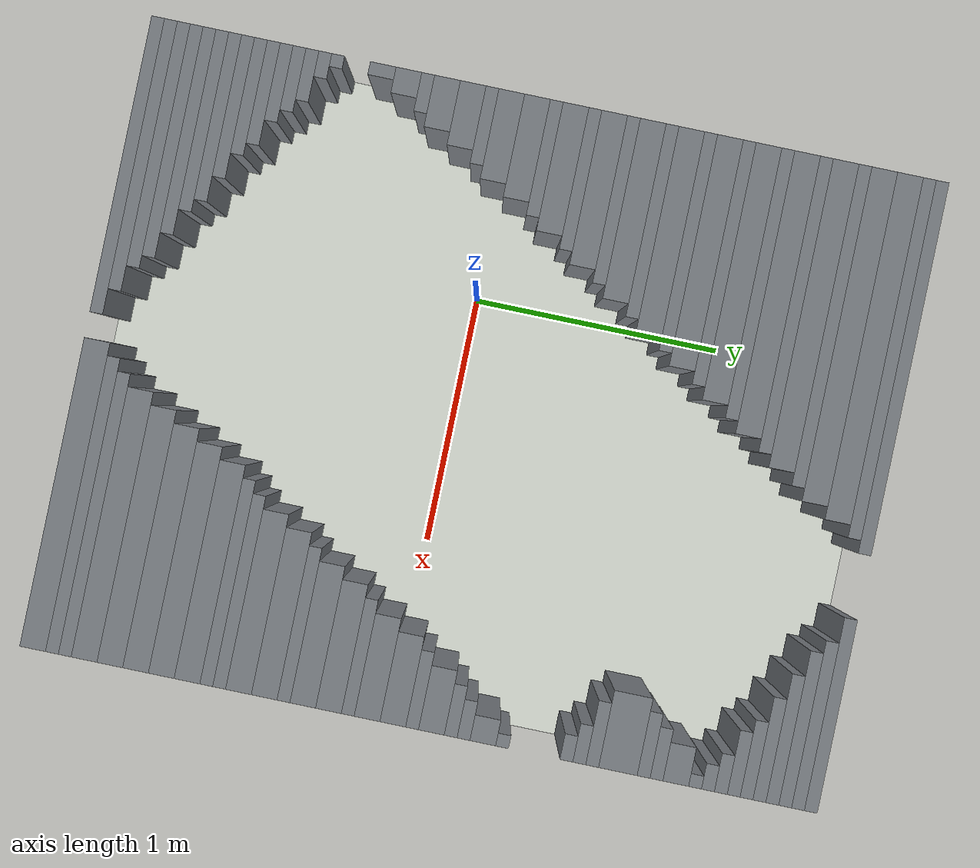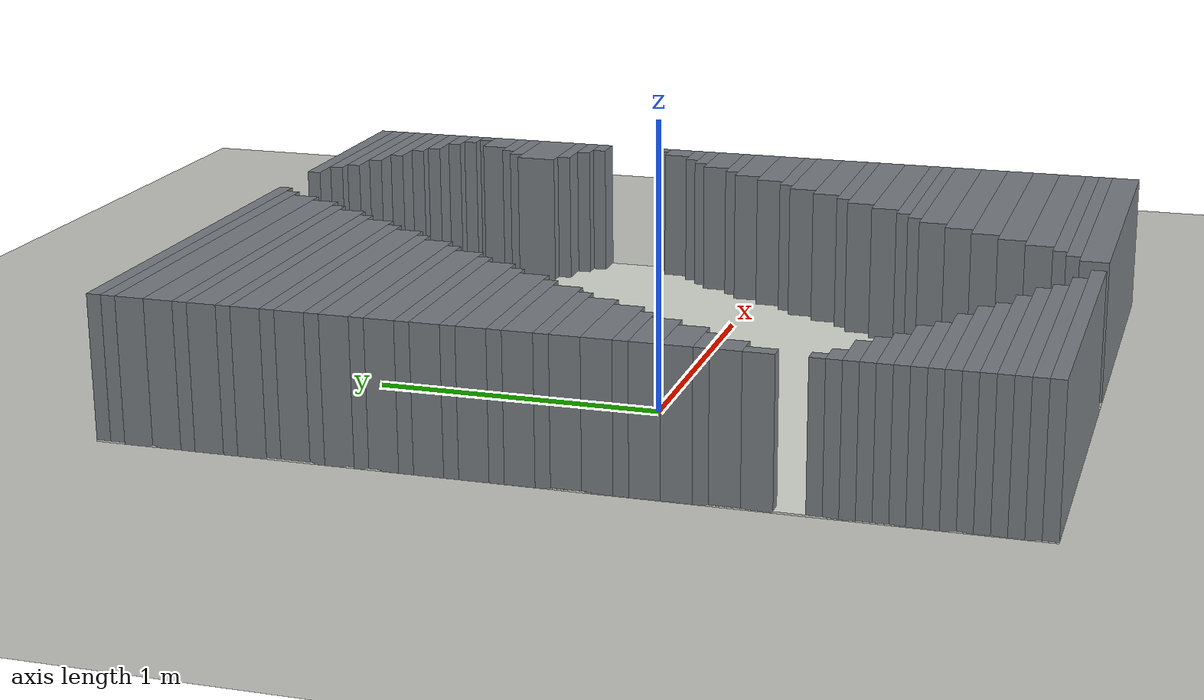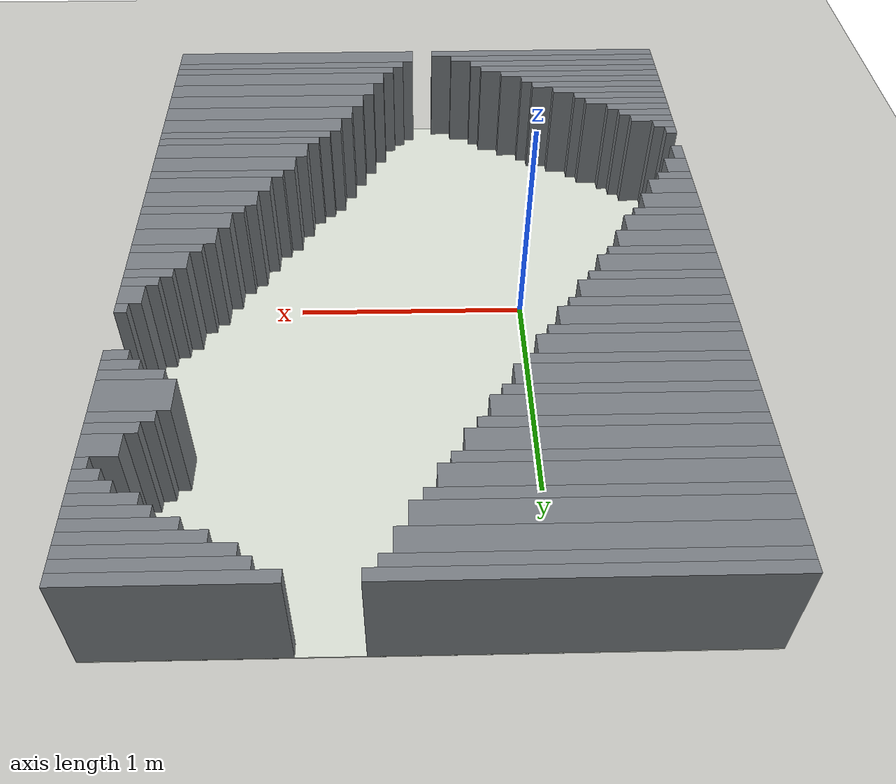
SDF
<sdf version="1.9">
 <world name="two_tb4_lab">
  <model name="ground_plane">
   <static>true</static>
   <link name="link">
    <collision name="collision">
     <geometry><plane><normal>0 0 1</normal><size>5 5</size></plane></geometry>
    </collision>
    <visual name="visual">
     <geometry><plane><normal>0 0 1</normal><size>5 5</size></plane></geometry>
     <material><ambient>0.78 0.78 0.76 1</ambient><diffuse>0.78 0.78 0.76 1</diffuse></material>
    </visual>
   </link>
  </model>
  <model name="lab_map_floor">
   <static>true</static>
   <pose>0.450 0.125 0.003 0 0 0</pose>
   <link name="link">
    <visual name="visual">
     <geometry><box><size>2.450 3.100 0.006</size></box></geometry>
     <material><ambient>0.86 0.88 0.84 1</ambient><diffuse>0.86 0.88 0.84 1</diffuse></material>
    </visual>
   </link>
  </model>
  <model name="lab_unknown_cells">
   <static>true</static>
   <link name="lab_unknown_cells_000">
    <pose>-0.200 -1.400 0.250 0 0 0</pose>
    <collision name="collision"><geometry><box><size>1.150 0.050 0.500</size></box></geometry></collision>
    <visual name="visual">
     <geometry><box><size>1.150 0.050 0.500</size></box></geometry>
     <material><ambient>0.48 0.50 0.52 1</ambient><diffuse>0.48 0.50 0.52 1</diffuse></material>
    </visual>
   </link>
   <link name="lab_unknown_cells_001">
    <pose>1.075 -1.375 0.250 0 0 0</pose>
    <collision name="collision"><geometry><box><size>1.200 0.100 0.500</size></box></geometry></collision>
    <visual name="visual">
     <geometry><box><size>1.200 0.100 0.500</size></box></geometry>
     <material><ambient>0.48 0.50 0.52 1</ambient><diffuse>0.48 0.50 0.52 1</diffuse></material>
    </visual>
   </link>
   <link name="lab_unknown_cells_002">
    <pose>-0.250 -1.350 0.250 0 0 0</pose>
    <collision name="collision"><geometry><box><size>1.050 0.050 0.500</size></box></geometry></collision>
    <visual name="visual">
     <geometry><box><size>1.050 0.050 0.500</size></box></geometry>
     <material><ambient>0.48 0.50 0.52 1</ambient><diffuse>0.48 0.50 0.52 1</diffuse></material>
    </visual>
   </link>
   <link name="lab_unknown_cells_003">
    <pose>-0.300 -1.300 0.250 0 0 0</pose>
    <collision name="collision"><geometry><box><size>0.950 0.050 0.500</size></box></geometry></collision>
    <visual name="visual">
     <geometry><box><size>0.950 0.050 0.500</size></box></geometry>
     <material><ambient>0.48 0.50 0.52 1</ambient><diffuse>0.48 0.50 0.52 1</diffuse></material>
    </visual>
   </link>
   <link name="lab_unknown_cells_004">
    <pose>1.100 -1.300 0.250 0 0 0</pose>
    <collision name="collision"><geometry><box><size>1.150 0.050 0.500</size></box></geometry></collision>
    <visual name="visual">
     <geometry><box><size>1.150 0.050 0.500</size></box></geometry>
     <material><ambient>0.48 0.50 0.52 1</ambient><diffuse>0.48 0.50 0.52 1</diffuse></material>
    </visual>
   </link>
   <link name="lab_unknown_cells_005">
    <pose>-0.325 -1.250 0.250 0 0 0</pose>
    <collision name="collision"><geometry><box><size>0.900 0.050 0.500</size></box></geometry></collision>
    <visual name="visual">
     <geometry><box><size>0.900 0.050 0.500</size></box></geometry>
     <material><ambient>0.48 0.50 0.52 1</ambient><diffuse>0.48 0.50 0.52 1</diffuse></material>
    </visual>
   </link>
   <link name="lab_unknown_cells_006">
    <pose>1.125 -1.250 0.250 0 0 0</pose>
    <collision name="collision"><geometry><box><size>1.100 0.050 0.500</size></box></geometry></collision>
    <visual name="visual">
     <geometry><box><size>1.100 0.050 0.500</size></box></geometry>
     <material><ambient>0.48 0.50 0.52 1</ambient><diffuse>0.48 0.50 0.52 1</diffuse></material>
    </visual>
   </link>
   <link name="lab_unknown_cells_007">
    <pose>-0.375 -1.200 0.250 0 0 0</pose>
    <collision name="collision"><geometry><box><size>0.800 0.050 0.500</size></box></geometry></collision>
    <visual name="visual">
     <geometry><box><size>0.800 0.050 0.500</size></box></geometry>
     <material><ambient>0.48 0.50 0.52 1</ambient><diffuse>0.48 0.50 0.52 1</diffuse></material>
    </visual>
   </link>
   <link name="lab_unknown_cells_008">
    <pose>1.150 -1.175 0.250 0 0 0</pose>
    <collision name="collision"><geometry><box><size>1.050 0.100 0.500</size></box></geometry></collision>
    <visual name="visual">
     <geometry><box><size>1.050 0.100 0.500</size></box></geometry>
     <material><ambient>0.48 0.50 0.52 1</ambient><diffuse>0.48 0.50 0.52 1</diffuse></material>
    </visual>
   </link>
   <link name="lab_unknown_cells_009">
    <pose>-0.425 -1.150 0.250 0 0 0</pose>
    <collision name="collision"><geometry><box><size>0.700 0.050 0.500</size></box></geometry></collision>
    <visual name="visual">
     <geometry><box><size>0.700 0.050 0.500</size></box></geometry>
     <material><ambient>0.48 0.50 0.52 1</ambient><diffuse>0.48 0.50 0.52 1</diffuse></material>
    </visual>
   </link>
   <link name="lab_unknown_cells_010">
    <pose>-0.450 -1.100 0.250 0 0 0</pose>
    <collision name="collision"><geometry><box><size>0.650 0.050 0.500</size></box></geometry></collision>
    <visual name="visual">
     <geometry><box><size>0.650 0.050 0.500</size></box></geometry>
     <material><ambient>0.48 0.50 0.52 1</ambient><diffuse>0.48 0.50 0.52 1</diffuse></material>
    </visual>
   </link>
   <link name="lab_unknown_cells_011">
    <pose>1.175 -1.075 0.250 0 0 0</pose>
    <collision name="collision"><geometry><box><size>1.000 0.100 0.500</size></box></geometry></collision>
    <visual name="visual">
     <geometry><box><size>1.000 0.100 0.500</size></box></geometry>
     <material><ambient>0.48 0.50 0.52 1</ambient><diffuse>0.48 0.50 0.52 1</diffuse></material>
    </visual>
   </link>
   <link name="lab_unknown_cells_012">
    <pose>-0.500 -1.050 0.250 0 0 0</pose>
    <collision name="collision"><geometry><box><size>0.550 0.050 0.500</size></box></geometry></collision>
    <visual name="visual">
     <geometry><box><size>0.550 0.050 0.500</size></box></geometry>
     <material><ambient>0.48 0.50 0.52 1</ambient><diffuse>0.48 0.50 0.52 1</diffuse></material>
    </visual>
   </link>
   <link name="lab_unknown_cells_013">
    <pose>-0.550 -1.000 0.250 0 0 0</pose>
    <collision name="collision"><geometry><box><size>0.450 0.050 0.500</size></box></geometry></collision>
    <visual name="visual">
     <geometry><box><size>0.450 0.050 0.500</size></box></geometry>
     <material><ambient>0.48 0.50 0.52 1</ambient><diffuse>0.48 0.50 0.52 1</diffuse></material>
    </visual>
   </link>
   <link name="lab_unknown_cells_014">
    <pose>1.200 -0.975 0.250 0 0 0</pose>
    <collision name="collision"><geometry><box><size>0.950 0.100 0.500</size></box></geometry></collision>
    <visual name="visual">
     <geometry><box><size>0.950 0.100 0.500</size></box></geometry>
     <material><ambient>0.48 0.50 0.52 1</ambient><diffuse>0.48 0.50 0.52 1</diffuse></material>
    </visual>
   </link>
   <link name="lab_unknown_cells_015">
    <pose>-0.575 -0.950 0.250 0 0 0</pose>
    <collision name="collision"><geometry><box><size>0.400 0.050 0.500</size></box></geometry></collision>
    <visual name="visual">
     <geometry><box><size>0.400 0.050 0.500</size></box></geometry>
     <material><ambient>0.48 0.50 0.52 1</ambient><diffuse>0.48 0.50 0.52 1</diffuse></material>
    </visual>
   </link>
   <link name="lab_unknown_cells_016">
    <pose>-0.625 -0.900 0.250 0 0 0</pose>
    <collision name="collision"><geometry><box><size>0.300 0.050 0.500</size></box></geometry></collision>
    <visual name="visual">
     <geometry><box><size>0.300 0.050 0.500</size></box></geometry>
     <material><ambient>0.48 0.50 0.52 1</ambient><diffuse>0.48 0.50 0.52 1</diffuse></material>
    </visual>
   </link>
   <link name="lab_unknown_cells_017">
    <pose>1.225 -0.875 0.250 0 0 0</pose>
    <collision name="collision"><geometry><box><size>0.900 0.100 0.500</size></box></geometry></collision>
    <visual name="visual">
     <geometry><box><size>0.900 0.100 0.500</size></box></geometry>
     <material><ambient>0.48 0.50 0.52 1</ambient><diffuse>0.48 0.50 0.52 1</diffuse></material>
    </visual>
   </link>
   <link name="lab_unknown_cells_018">
    <pose>-0.650 -0.850 0.250 0 0 0</pose>
    <collision name="collision"><geometry><box><size>0.250 0.050 0.500</size></box></geometry></collision>
    <visual name="visual">
     <geometry><box><size>0.250 0.050 0.500</size></box></geometry>
     <material><ambient>0.48 0.50 0.52 1</ambient><diffuse>0.48 0.50 0.52 1</diffuse></material>
    </visual>
   </link>
   <link name="lab_unknown_cells_019">
    <pose>-0.675 -0.800 0.250 0 0 0</pose>
    <collision name="collision"><geometry><box><size>0.200 0.050 0.500</size></box></geometry></collision>
    <visual name="visual">
     <geometry><box><size>0.200 0.050 0.500</size></box></geometry>
     <material><ambient>0.48 0.50 0.52 1</ambient><diffuse>0.48 0.50 0.52 1</diffuse></material>
    </visual>
   </link>
   <link name="lab_unknown_cells_020">
    <pose>1.250 -0.775 0.250 0 0 0</pose>
    <collision name="collision"><geometry><box><size>0.850 0.100 0.500</size></box></geometry></collision>
    <visual name="visual">
     <geometry><box><size>0.850 0.100 0.500</size></box></geometry>
     <material><ambient>0.48 0.50 0.52 1</ambient><diffuse>0.48 0.50 0.52 1</diffuse></material>
    </visual>
   </link>
   <link name="lab_unknown_cells_021">
    <pose>-0.725 -0.750 0.250 0 0 0</pose>
    <collision name="collision"><geometry><box><size>0.100 0.050 0.500</size></box></geometry></collision>
    <visual name="visual">
     <geometry><box><size>0.100 0.050 0.500</size></box></geometry>
     <material><ambient>0.48 0.50 0.52 1</ambient><diffuse>0.48 0.50 0.52 1</diffuse></material>
    </visual>
   </link>
   <link name="lab_unknown_cells_022">
    <pose>-0.750 -0.700 0.250 0 0 0</pose>
    <collision name="collision"><geometry><box><size>0.050 0.050 0.500</size></box></geometry></collision>
    <visual name="visual">
     <geometry><box><size>0.050 0.050 0.500</size></box></geometry>
     <material><ambient>0.48 0.50 0.52 1</ambient><diffuse>0.48 0.50 0.52 1</diffuse></material>
    </visual>
   </link>
   <link name="lab_unknown_cells_023">
    <pose>1.275 -0.700 0.250 0 0 0</pose>
    <collision name="collision"><geometry><box><size>0.800 0.050 0.500</size></box></geometry></collision>
    <visual name="visual">
     <geometry><box><size>0.800 0.050 0.500</size></box></geometry>
     <material><ambient>0.48 0.50 0.52 1</ambient><diffuse>0.48 0.50 0.52 1</diffuse></material>
    </visual>
   </link>
   <link name="lab_unknown_cells_024">
    <pose>1.300 -0.650 0.250 0 0 0</pose>
    <collision name="collision"><geometry><box><size>0.750 0.050 0.500</size></box></geometry></collision>
    <visual name="visual">
     <geometry><box><size>0.750 0.050 0.500</size></box></geometry>
     <material><ambient>0.48 0.50 0.52 1</ambient><diffuse>0.48 0.50 0.52 1</diffuse></material>
    </visual>
   </link>
   <link name="lab_unknown_cells_025">
    <pose>1.325 -0.575 0.250 0 0 0</pose>
    <collision name="collision"><geometry><box><size>0.700 0.100 0.500</size></box></geometry></collision>
    <visual name="visual">
     <geometry><box><size>0.700 0.100 0.500</size></box></geometry>
     <material><ambient>0.48 0.50 0.52 1</ambient><diffuse>0.48 0.50 0.52 1</diffuse></material>
    </visual>
   </link>
   <link name="lab_unknown_cells_026">
    <pose>-0.750 -0.525 0.250 0 0 0</pose>
    <collision name="collision"><geometry><box><size>0.050 0.100 0.500</size></box></geometry></collision>
    <visual name="visual">
     <geometry><box><size>0.050 0.100 0.500</size></box></geometry>
     <material><ambient>0.48 0.50 0.52 1</ambient><diffuse>0.48 0.50 0.52 1</diffuse></material>
    </visual>
   </link>
   <link name="lab_unknown_cells_027">
    <pose>1.350 -0.475 0.250 0 0 0</pose>
    <collision name="collision"><geometry><box><size>0.650 0.100 0.500</size></box></geometry></collision>
    <visual name="visual">
     <geometry><box><size>0.650 0.100 0.500</size></box></geometry>
     <material><ambient>0.48 0.50 0.52 1</ambient><diffuse>0.48 0.50 0.52 1</diffuse></material>
    </visual>
   </link>
   <link name="lab_unknown_cells_028">
    <pose>-0.725 -0.425 0.250 0 0 0</pose>
    <collision name="collision"><geometry><box><size>0.100 0.100 0.500</size></box></geometry></collision>
    <visual name="visual">
     <geometry><box><size>0.100 0.100 0.500</size></box></geometry>
     <material><ambient>0.48 0.50 0.52 1</ambient><diffuse>0.48 0.50 0.52 1</diffuse></material>
    </visual>
   </link>
   <link name="lab_unknown_cells_029">
    <pose>1.375 -0.400 0.250 0 0 0</pose>
    <collision name="collision"><geometry><box><size>0.600 0.050 0.500</size></box></geometry></collision>
    <visual name="visual">
     <geometry><box><size>0.600 0.050 0.500</size></box></geometry>
     <material><ambient>0.48 0.50 0.52 1</ambient><diffuse>0.48 0.50 0.52 1</diffuse></material>
    </visual>
   </link>
   <link name="lab_unknown_cells_030">
    <pose>-0.700 -0.350 0.250 0 0 0</pose>
    <collision name="collision"><geometry><box><size>0.150 0.050 0.500</size></box></geometry></collision>
    <visual name="visual">
     <geometry><box><size>0.150 0.050 0.500</size></box></geometry>
     <material><ambient>0.48 0.50 0.52 1</ambient><diffuse>0.48 0.50 0.52 1</diffuse></material>
    </visual>
   </link>
   <link name="lab_unknown_cells_031">
    <pose>1.400 -0.325 0.250 0 0 0</pose>
    <collision name="collision"><geometry><box><size>0.550 0.100 0.500</size></box></geometry></collision>
    <visual name="visual">
     <geometry><box><size>0.550 0.100 0.500</size></box></geometry>
     <material><ambient>0.48 0.50 0.52 1</ambient><diffuse>0.48 0.50 0.52 1</diffuse></material>
    </visual>
   </link>
   <link name="lab_unknown_cells_032">
    <pose>-0.675 -0.275 0.250 0 0 0</pose>
    <collision name="collision"><geometry><box><size>0.200 0.100 0.500</size></box></geometry></collision>
    <visual name="visual">
     <geometry><box><size>0.200 0.100 0.500</size></box></geometry>
     <material><ambient>0.48 0.50 0.52 1</ambient><diffuse>0.48 0.50 0.52 1</diffuse></material>
    </visual>
   </link>
   <link name="lab_unknown_cells_033">
    <pose>1.425 -0.225 0.250 0 0 0</pose>
    <collision name="collision"><geometry><box><size>0.500 0.100 0.500</size></box></geometry></collision>
    <visual name="visual">
     <geometry><box><size>0.500 0.100 0.500</size></box></geometry>
     <material><ambient>0.48 0.50 0.52 1</ambient><diffuse>0.48 0.50 0.52 1</diffuse></material>
    </visual>
   </link>
   <link name="lab_unknown_cells_034">
    <pose>-0.650 -0.175 0.250 0 0 0</pose>
    <collision name="collision"><geometry><box><size>0.250 0.100 0.500</size></box></geometry></collision>
    <visual name="visual">
     <geometry><box><size>0.250 0.100 0.500</size></box></geometry>
     <material><ambient>0.48 0.50 0.52 1</ambient><diffuse>0.48 0.50 0.52 1</diffuse></material>
    </visual>
   </link>
   <link name="lab_unknown_cells_035">
    <pose>1.450 -0.150 0.250 0 0 0</pose>
    <collision name="collision"><geometry><box><size>0.450 0.050 0.500</size></box></geometry></collision>
    <visual name="visual">
     <geometry><box><size>0.450 0.050 0.500</size></box></geometry>
     <material><ambient>0.48 0.50 0.52 1</ambient><diffuse>0.48 0.50 0.52 1</diffuse></material>
    </visual>
   </link>
   <link name="lab_unknown_cells_036">
    <pose>-0.625 -0.100 0.250 0 0 0</pose>
    <collision name="collision"><geometry><box><size>0.300 0.050 0.500</size></box></geometry></collision>
    <visual name="visual">
     <geometry><box><size>0.300 0.050 0.500</size></box></geometry>
     <material><ambient>0.48 0.50 0.52 1</ambient><diffuse>0.48 0.50 0.52 1</diffuse></material>
    </visual>
   </link>
   <link name="lab_unknown_cells_037">
    <pose>1.475 -0.075 0.250 0 0 0</pose>
    <collision name="collision"><geometry><box><size>0.400 0.100 0.500</size></box></geometry></collision>
    <visual name="visual">
     <geometry><box><size>0.400 0.100 0.500</size></box></geometry>
     <material><ambient>0.48 0.50 0.52 1</ambient><diffuse>0.48 0.50 0.52 1</diffuse></material>
    </visual>
   </link>
   <link name="lab_unknown_cells_038">
    <pose>-0.600 -0.025 0.250 0 0 0</pose>
    <collision name="collision"><geometry><box><size>0.350 0.100 0.500</size></box></geometry></collision>
    <visual name="visual">
     <geometry><box><size>0.350 0.100 0.500</size></box></geometry>
     <material><ambient>0.48 0.50 0.52 1</ambient><diffuse>0.48 0.50 0.52 1</diffuse></material>
    </visual>
   </link>
   <link name="lab_unknown_cells_039">
    <pose>1.500 0.025 0.250 0 0 0</pose>
    <collision name="collision"><geometry><box><size>0.350 0.100 0.500</size></box></geometry></collision>
    <visual name="visual">
     <geometry><box><size>0.350 0.100 0.500</size></box></geometry>
     <material><ambient>0.48 0.50 0.52 1</ambient><diffuse>0.48 0.50 0.52 1</diffuse></material>
    </visual>
   </link>
   <link name="lab_unknown_cells_040">
    <pose>-0.575 0.075 0.250 0 0 0</pose>
    <collision name="collision"><geometry><box><size>0.400 0.100 0.500</size></box></geometry></collision>
    <visual name="visual">
     <geometry><box><size>0.400 0.100 0.500</size></box></geometry>
     <material><ambient>0.48 0.50 0.52 1</ambient><diffuse>0.48 0.50 0.52 1</diffuse></material>
    </visual>
   </link>
   <link name="lab_unknown_cells_041">
    <pose>1.525 0.100 0.250 0 0 0</pose>
    <collision name="collision"><geometry><box><size>0.300 0.050 0.500</size></box></geometry></collision>
    <visual name="visual">
     <geometry><box><size>0.300 0.050 0.500</size></box></geometry>
     <material><ambient>0.48 0.50 0.52 1</ambient><diffuse>0.48 0.50 0.52 1</diffuse></material>
    </visual>
   </link>
   <link name="lab_unknown_cells_042">
    <pose>-0.550 0.150 0.250 0 0 0</pose>
    <collision name="collision"><geometry><box><size>0.450 0.050 0.500</size></box></geometry></collision>
    <visual name="visual">
     <geometry><box><size>0.450 0.050 0.500</size></box></geometry>
     <material><ambient>0.48 0.50 0.52 1</ambient><diffuse>0.48 0.50 0.52 1</diffuse></material>
    </visual>
   </link>
   <link name="lab_unknown_cells_043">
    <pose>1.550 0.175 0.250 0 0 0</pose>
    <collision name="collision"><geometry><box><size>0.250 0.100 0.500</size></box></geometry></collision>
    <visual name="visual">
     <geometry><box><size>0.250 0.100 0.500</size></box></geometry>
     <material><ambient>0.48 0.50 0.52 1</ambient><diffuse>0.48 0.50 0.52 1</diffuse></material>
    </visual>
   </link>
   <link name="lab_unknown_cells_044">
    <pose>-0.525 0.225 0.250 0 0 0</pose>
    <collision name="collision"><geometry><box><size>0.500 0.100 0.500</size></box></geometry></collision>
    <visual name="visual">
     <geometry><box><size>0.500 0.100 0.500</size></box></geometry>
     <material><ambient>0.48 0.50 0.52 1</ambient><diffuse>0.48 0.50 0.52 1</diffuse></material>
    </visual>
   </link>
   <link name="lab_unknown_cells_045">
    <pose>1.575 0.250 0.250 0 0 0</pose>
    <collision name="collision"><geometry><box><size>0.200 0.050 0.500</size></box></geometry></collision>
    <visual name="visual">
     <geometry><box><size>0.200 0.050 0.500</size></box></geometry>
     <material><ambient>0.48 0.50 0.52 1</ambient><diffuse>0.48 0.50 0.52 1</diffuse></material>
    </visual>
   </link>
   <link name="lab_unknown_cells_046">
    <pose>-0.500 0.300 0.250 0 0 0</pose>
    <collision name="collision"><geometry><box><size>0.550 0.050 0.500</size></box></geometry></collision>
    <visual name="visual">
     <geometry><box><size>0.550 0.050 0.500</size></box></geometry>
     <material><ambient>0.48 0.50 0.52 1</ambient><diffuse>0.48 0.50 0.52 1</diffuse></material>
    </visual>
   </link>
   <link name="lab_unknown_cells_047">
    <pose>1.600 0.300 0.250 0 0 0</pose>
    <collision name="collision"><geometry><box><size>0.150 0.050 0.500</size></box></geometry></collision>
    <visual name="visual">
     <geometry><box><size>0.150 0.050 0.500</size></box></geometry>
     <material><ambient>0.48 0.50 0.52 1</ambient><diffuse>0.48 0.50 0.52 1</diffuse></material>
    </visual>
   </link>
   <link name="lab_unknown_cells_048">
    <pose>-0.475 0.375 0.250 0 0 0</pose>
    <collision name="collision"><geometry><box><size>0.600 0.100 0.500</size></box></geometry></collision>
    <visual name="visual">
     <geometry><box><size>0.600 0.100 0.500</size></box></geometry>
     <material><ambient>0.48 0.50 0.52 1</ambient><diffuse>0.48 0.50 0.52 1</diffuse></material>
    </visual>
   </link>
   <link name="lab_unknown_cells_049">
    <pose>1.625 0.375 0.250 0 0 0</pose>
    <collision name="collision"><geometry><box><size>0.100 0.100 0.500</size></box></geometry></collision>
    <visual name="visual">
     <geometry><box><size>0.100 0.100 0.500</size></box></geometry>
     <material><ambient>0.48 0.50 0.52 1</ambient><diffuse>0.48 0.50 0.52 1</diffuse></material>
    </visual>
   </link>
   <link name="lab_unknown_cells_050">
    <pose>-0.450 0.450 0.250 0 0 0</pose>
    <collision name="collision"><geometry><box><size>0.650 0.050 0.500</size></box></geometry></collision>
    <visual name="visual">
     <geometry><box><size>0.650 0.050 0.500</size></box></geometry>
     <material><ambient>0.48 0.50 0.52 1</ambient><diffuse>0.48 0.50 0.52 1</diffuse></material>
    </visual>
   </link>
   <link name="lab_unknown_cells_051">
    <pose>1.650 0.450 0.250 0 0 0</pose>
    <collision name="collision"><geometry><box><size>0.050 0.050 0.500</size></box></geometry></collision>
    <visual name="visual">
     <geometry><box><size>0.050 0.050 0.500</size></box></geometry>
     <material><ambient>0.48 0.50 0.52 1</ambient><diffuse>0.48 0.50 0.52 1</diffuse></material>
    </visual>
   </link>
   <link name="lab_unknown_cells_052">
    <pose>-0.425 0.525 0.250 0 0 0</pose>
    <collision name="collision"><geometry><box><size>0.700 0.100 0.500</size></box></geometry></collision>
    <visual name="visual">
     <geometry><box><size>0.700 0.100 0.500</size></box></geometry>
     <material><ambient>0.48 0.50 0.52 1</ambient><diffuse>0.48 0.50 0.52 1</diffuse></material>
    </visual>
   </link>
   <link name="lab_unknown_cells_053">
    <pose>-0.400 0.600 0.250 0 0 0</pose>
    <collision name="collision"><geometry><box><size>0.750 0.050 0.500</size></box></geometry></collision>
    <visual name="visual">
     <geometry><box><size>0.750 0.050 0.500</size></box></geometry>
     <material><ambient>0.48 0.50 0.52 1</ambient><diffuse>0.48 0.50 0.52 1</diffuse></material>
    </visual>
   </link>
   <link name="lab_unknown_cells_054">
    <pose>-0.375 0.675 0.250 0 0 0</pose>
    <collision name="collision"><geometry><box><size>0.800 0.100 0.500</size></box></geometry></collision>
    <visual name="visual">
     <geometry><box><size>0.800 0.100 0.500</size></box></geometry>
     <material><ambient>0.48 0.50 0.52 1</ambient><diffuse>0.48 0.50 0.52 1</diffuse></material>
    </visual>
   </link>
   <link name="lab_unknown_cells_055">
    <pose>1.625 0.700 0.250 0 0 0</pose>
    <collision name="collision"><geometry><box><size>0.100 0.050 0.500</size></box></geometry></collision>
    <visual name="visual">
     <geometry><box><size>0.100 0.050 0.500</size></box></geometry>
     <material><ambient>0.48 0.50 0.52 1</ambient><diffuse>0.48 0.50 0.52 1</diffuse></material>
    </visual>
   </link>
   <link name="lab_unknown_cells_056">
    <pose>-0.350 0.750 0.250 0 0 0</pose>
    <collision name="collision"><geometry><box><size>0.850 0.050 0.500</size></box></geometry></collision>
    <visual name="visual">
     <geometry><box><size>0.850 0.050 0.500</size></box></geometry>
     <material><ambient>0.48 0.50 0.52 1</ambient><diffuse>0.48 0.50 0.52 1</diffuse></material>
    </visual>
   </link>
   <link name="lab_unknown_cells_057">
    <pose>1.600 0.750 0.250 0 0 0</pose>
    <collision name="collision"><geometry><box><size>0.150 0.050 0.500</size></box></geometry></collision>
    <visual name="visual">
     <geometry><box><size>0.150 0.050 0.500</size></box></geometry>
     <material><ambient>0.48 0.50 0.52 1</ambient><diffuse>0.48 0.50 0.52 1</diffuse></material>
    </visual>
   </link>
   <link name="lab_unknown_cells_058">
    <pose>1.550 0.800 0.250 0 0 0</pose>
    <collision name="collision"><geometry><box><size>0.250 0.050 0.500</size></box></geometry></collision>
    <visual name="visual">
     <geometry><box><size>0.250 0.050 0.500</size></box></geometry>
     <material><ambient>0.48 0.50 0.52 1</ambient><diffuse>0.48 0.50 0.52 1</diffuse></material>
    </visual>
   </link>
   <link name="lab_unknown_cells_059">
    <pose>-0.325 0.825 0.250 0 0 0</pose>
    <collision name="collision"><geometry><box><size>0.900 0.100 0.500</size></box></geometry></collision>
    <visual name="visual">
     <geometry><box><size>0.900 0.100 0.500</size></box></geometry>
     <material><ambient>0.48 0.50 0.52 1</ambient><diffuse>0.48 0.50 0.52 1</diffuse></material>
    </visual>
   </link>
   <link name="lab_unknown_cells_060">
    <pose>-0.300 0.900 0.250 0 0 0</pose>
    <collision name="collision"><geometry><box><size>0.950 0.050 0.500</size></box></geometry></collision>
    <visual name="visual">
     <geometry><box><size>0.950 0.050 0.500</size></box></geometry>
     <material><ambient>0.48 0.50 0.52 1</ambient><diffuse>0.48 0.50 0.52 1</diffuse></material>
    </visual>
   </link>
   <link name="lab_unknown_cells_061">
    <pose>1.525 0.900 0.250 0 0 0</pose>
    <collision name="collision"><geometry><box><size>0.300 0.150 0.500</size></box></geometry></collision>
    <visual name="visual">
     <geometry><box><size>0.300 0.150 0.500</size></box></geometry>
     <material><ambient>0.48 0.50 0.52 1</ambient><diffuse>0.48 0.50 0.52 1</diffuse></material>
    </visual>
   </link>
   <link name="lab_unknown_cells_062">
    <pose>-0.275 0.975 0.250 0 0 0</pose>
    <collision name="collision"><geometry><box><size>1.000 0.100 0.500</size></box></geometry></collision>
    <visual name="visual">
     <geometry><box><size>1.000 0.100 0.500</size></box></geometry>
     <material><ambient>0.48 0.50 0.52 1</ambient><diffuse>0.48 0.50 0.52 1</diffuse></material>
    </visual>
   </link>
   <link name="lab_unknown_cells_063">
    <pose>1.550 1.000 0.250 0 0 0</pose>
    <collision name="collision"><geometry><box><size>0.250 0.050 0.500</size></box></geometry></collision>
    <visual name="visual">
     <geometry><box><size>0.250 0.050 0.500</size></box></geometry>
     <material><ambient>0.48 0.50 0.52 1</ambient><diffuse>0.48 0.50 0.52 1</diffuse></material>
    </visual>
   </link>
   <link name="lab_unknown_cells_064">
    <pose>-0.250 1.050 0.250 0 0 0</pose>
    <collision name="collision"><geometry><box><size>1.050 0.050 0.500</size></box></geometry></collision>
    <visual name="visual">
     <geometry><box><size>1.050 0.050 0.500</size></box></geometry>
     <material><ambient>0.48 0.50 0.52 1</ambient><diffuse>0.48 0.50 0.52 1</diffuse></material>
    </visual>
   </link>
   <link name="lab_unknown_cells_065">
    <pose>1.575 1.050 0.250 0 0 0</pose>
    <collision name="collision"><geometry><box><size>0.200 0.050 0.500</size></box></geometry></collision>
    <visual name="visual">
     <geometry><box><size>0.200 0.050 0.500</size></box></geometry>
     <material><ambient>0.48 0.50 0.52 1</ambient><diffuse>0.48 0.50 0.52 1</diffuse></material>
    </visual>
   </link>
   <link name="lab_unknown_cells_066">
    <pose>-0.225 1.125 0.250 0 0 0</pose>
    <collision name="collision"><geometry><box><size>1.100 0.100 0.500</size></box></geometry></collision>
    <visual name="visual">
     <geometry><box><size>1.100 0.100 0.500</size></box></geometry>
     <material><ambient>0.48 0.50 0.52 1</ambient><diffuse>0.48 0.50 0.52 1</diffuse></material>
    </visual>
   </link>
   <link name="lab_unknown_cells_067">
    <pose>1.600 1.125 0.250 0 0 0</pose>
    <collision name="collision"><geometry><box><size>0.150 0.100 0.500</size></box></geometry></collision>
    <visual name="visual">
     <geometry><box><size>0.150 0.100 0.500</size></box></geometry>
     <material><ambient>0.48 0.50 0.52 1</ambient><diffuse>0.48 0.50 0.52 1</diffuse></material>
    </visual>
   </link>
   <link name="lab_unknown_cells_068">
    <pose>-0.200 1.200 0.250 0 0 0</pose>
    <collision name="collision"><geometry><box><size>1.150 0.050 0.500</size></box></geometry></collision>
    <visual name="visual">
     <geometry><box><size>1.150 0.050 0.500</size></box></geometry>
     <material><ambient>0.48 0.50 0.52 1</ambient><diffuse>0.48 0.50 0.52 1</diffuse></material>
    </visual>
   </link>
   <link name="lab_unknown_cells_069">
    <pose>1.650 1.200 0.250 0 0 0</pose>
    <collision name="collision"><geometry><box><size>0.050 0.050 0.500</size></box></geometry></collision>
    <visual name="visual">
     <geometry><box><size>0.050 0.050 0.500</size></box></geometry>
     <material><ambient>0.48 0.50 0.52 1</ambient><diffuse>0.48 0.50 0.52 1</diffuse></material>
    </visual>
   </link>
   <link name="lab_unknown_cells_070">
    <pose>1.625 1.250 0.250 0 0 0</pose>
    <collision name="collision"><geometry><box><size>0.100 0.050 0.500</size></box></geometry></collision>
    <visual name="visual">
     <geometry><box><size>0.100 0.050 0.500</size></box></geometry>
     <material><ambient>0.48 0.50 0.52 1</ambient><diffuse>0.48 0.50 0.52 1</diffuse></material>
    </visual>
   </link>
   <link name="lab_unknown_cells_071">
    <pose>-0.175 1.275 0.250 0 0 0</pose>
    <collision name="collision"><geometry><box><size>1.200 0.100 0.500</size></box></geometry></collision>
    <visual name="visual">
     <geometry><box><size>1.200 0.100 0.500</size></box></geometry>
     <material><ambient>0.48 0.50 0.52 1</ambient><diffuse>0.48 0.50 0.52 1</diffuse></material>
    </visual>
   </link>
   <link name="lab_unknown_cells_072">
    <pose>1.600 1.300 0.250 0 0 0</pose>
    <collision name="collision"><geometry><box><size>0.150 0.050 0.500</size></box></geometry></collision>
    <visual name="visual">
     <geometry><box><size>0.150 0.050 0.500</size></box></geometry>
     <material><ambient>0.48 0.50 0.52 1</ambient><diffuse>0.48 0.50 0.52 1</diffuse></material>
    </visual>
   </link>
   <link name="lab_unknown_cells_073">
    <pose>-0.150 1.350 0.250 0 0 0</pose>
    <collision name="collision"><geometry><box><size>1.250 0.050 0.500</size></box></geometry></collision>
    <visual name="visual">
     <geometry><box><size>1.250 0.050 0.500</size></box></geometry>
     <material><ambient>0.48 0.50 0.52 1</ambient><diffuse>0.48 0.50 0.52 1</diffuse></material>
    </visual>
   </link>
   <link name="lab_unknown_cells_074">
    <pose>1.550 1.350 0.250 0 0 0</pose>
    <collision name="collision"><geometry><box><size>0.250 0.050 0.500</size></box></geometry></collision>
    <visual name="visual">
     <geometry><box><size>0.250 0.050 0.500</size></box></geometry>
     <material><ambient>0.48 0.50 0.52 1</ambient><diffuse>0.48 0.50 0.52 1</diffuse></material>
    </visual>
   </link>
   <link name="lab_unknown_cells_075">
    <pose>1.525 1.400 0.250 0 0 0</pose>
    <collision name="collision"><geometry><box><size>0.300 0.050 0.500</size></box></geometry></collision>
    <visual name="visual">
     <geometry><box><size>0.300 0.050 0.500</size></box></geometry>
     <material><ambient>0.48 0.50 0.52 1</ambient><diffuse>0.48 0.50 0.52 1</diffuse></material>
    </visual>
   </link>
   <link name="lab_unknown_cells_076">
    <pose>-0.125 1.425 0.250 0 0 0</pose>
    <collision name="collision"><geometry><box><size>1.300 0.100 0.500</size></box></geometry></collision>
    <visual name="visual">
     <geometry><box><size>1.300 0.100 0.500</size></box></geometry>
     <material><ambient>0.48 0.50 0.52 1</ambient><diffuse>0.48 0.50 0.52 1</diffuse></material>
    </visual>
   </link>
   <link name="lab_unknown_cells_077">
    <pose>1.475 1.450 0.250 0 0 0</pose>
    <collision name="collision"><geometry><box><size>0.400 0.050 0.500</size></box></geometry></collision>
    <visual name="visual">
     <geometry><box><size>0.400 0.050 0.500</size></box></geometry>
     <material><ambient>0.48 0.50 0.52 1</ambient><diffuse>0.48 0.50 0.52 1</diffuse></material>
    </visual>
   </link>
   <link name="lab_unknown_cells_078">
    <pose>1.425 1.500 0.250 0 0 0</pose>
    <collision name="collision"><geometry><box><size>0.500 0.050 0.500</size></box></geometry></collision>
    <visual name="visual">
     <geometry><box><size>0.500 0.050 0.500</size></box></geometry>
     <material><ambient>0.48 0.50 0.52 1</ambient><diffuse>0.48 0.50 0.52 1</diffuse></material>
    </visual>
   </link>
   <link name="lab_unknown_cells_079">
    <pose>-0.100 1.525 0.250 0 0 0</pose>
    <collision name="collision"><geometry><box><size>1.350 0.100 0.500</size></box></geometry></collision>
    <visual name="visual">
     <geometry><box><size>1.350 0.100 0.500</size></box></geometry>
     <material><ambient>0.48 0.50 0.52 1</ambient><diffuse>0.48 0.50 0.52 1</diffuse></material>
    </visual>
   </link>
   <link name="lab_unknown_cells_080">
    <pose>1.375 1.550 0.250 0 0 0</pose>
    <collision name="collision"><geometry><box><size>0.600 0.050 0.500</size></box></geometry></collision>
    <visual name="visual">
     <geometry><box><size>0.600 0.050 0.500</size></box></geometry>
     <material><ambient>0.48 0.50 0.52 1</ambient><diffuse>0.48 0.50 0.52 1</diffuse></material>
    </visual>
   </link>
   <link name="lab_unknown_cells_081">
    <pose>-0.075 1.600 0.250 0 0 0</pose>
    <collision name="collision"><geometry><box><size>1.400 0.050 0.500</size></box></geometry></collision>
    <visual name="visual">
     <geometry><box><size>1.400 0.050 0.500</size></box></geometry>
     <material><ambient>0.48 0.50 0.52 1</ambient><diffuse>0.48 0.50 0.52 1</diffuse></material>
    </visual>
   </link>
   <link name="lab_unknown_cells_082">
    <pose>1.350 1.600 0.250 0 0 0</pose>
    <collision name="collision"><geometry><box><size>0.650 0.050 0.500</size></box></geometry></collision>
    <visual name="visual">
     <geometry><box><size>0.650 0.050 0.500</size></box></geometry>
     <material><ambient>0.48 0.50 0.52 1</ambient><diffuse>0.48 0.50 0.52 1</diffuse></material>
    </visual>
   </link>
   <link name="lab_unknown_cells_083">
    <pose>-0.050 1.650 0.250 0 0 0</pose>
    <collision name="collision"><geometry><box><size>1.450 0.050 0.500</size></box></geometry></collision>
    <visual name="visual">
     <geometry><box><size>1.450 0.050 0.500</size></box></geometry>
     <material><ambient>0.48 0.50 0.52 1</ambient><diffuse>0.48 0.50 0.52 1</diffuse></material>
    </visual>
   </link>
   <link name="lab_unknown_cells_084">
    <pose>1.300 1.650 0.250 0 0 0</pose>
    <collision name="collision"><geometry><box><size>0.750 0.050 0.500</size></box></geometry></collision>
    <visual name="visual">
     <geometry><box><size>0.750 0.050 0.500</size></box></geometry>
     <material><ambient>0.48 0.50 0.52 1</ambient><diffuse>0.48 0.50 0.52 1</diffuse></material>
    </visual>
   </link>
  </model>
 </world>
</sdf>
